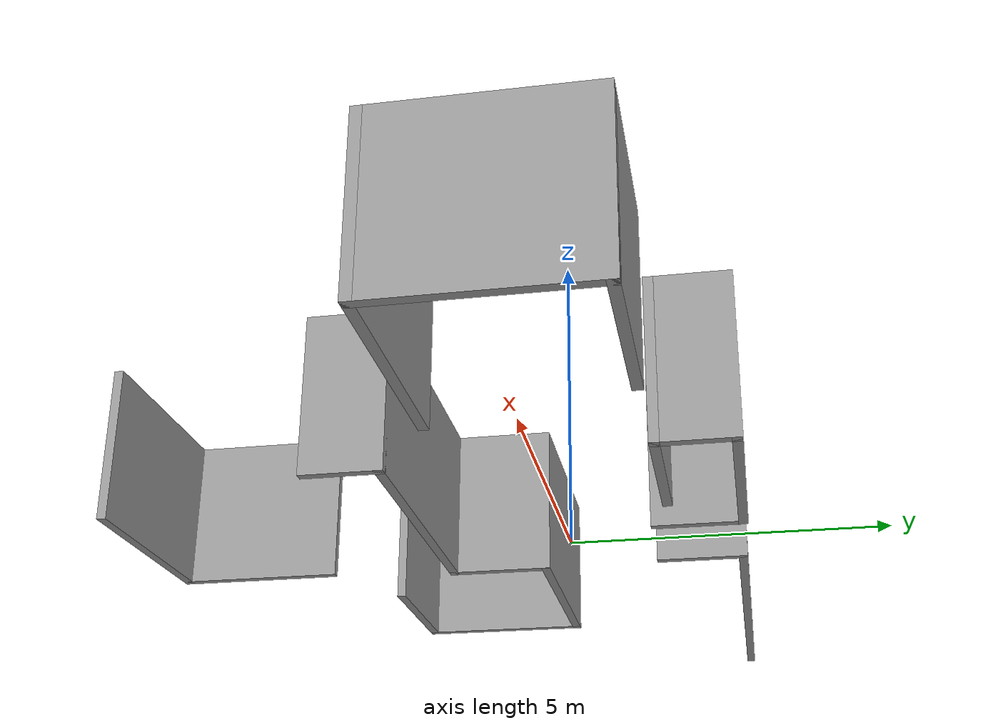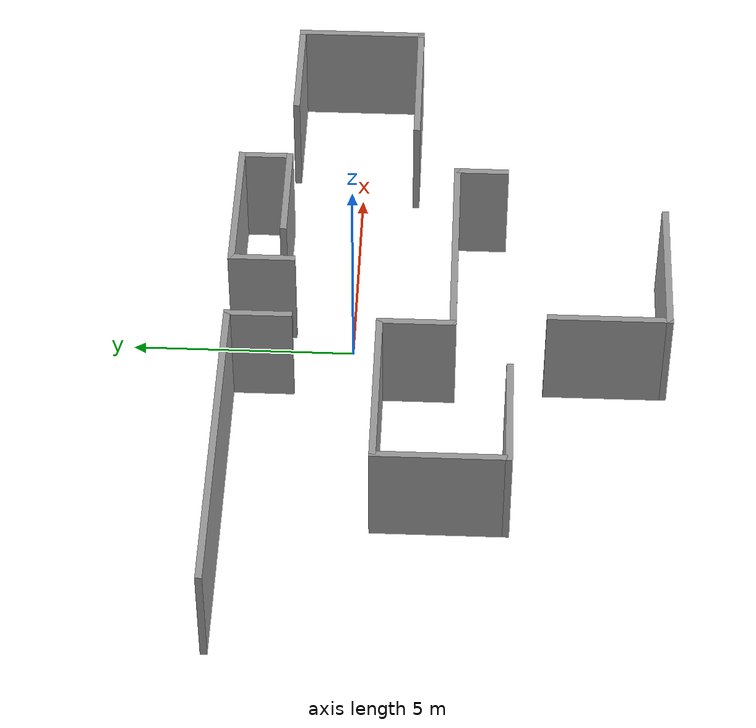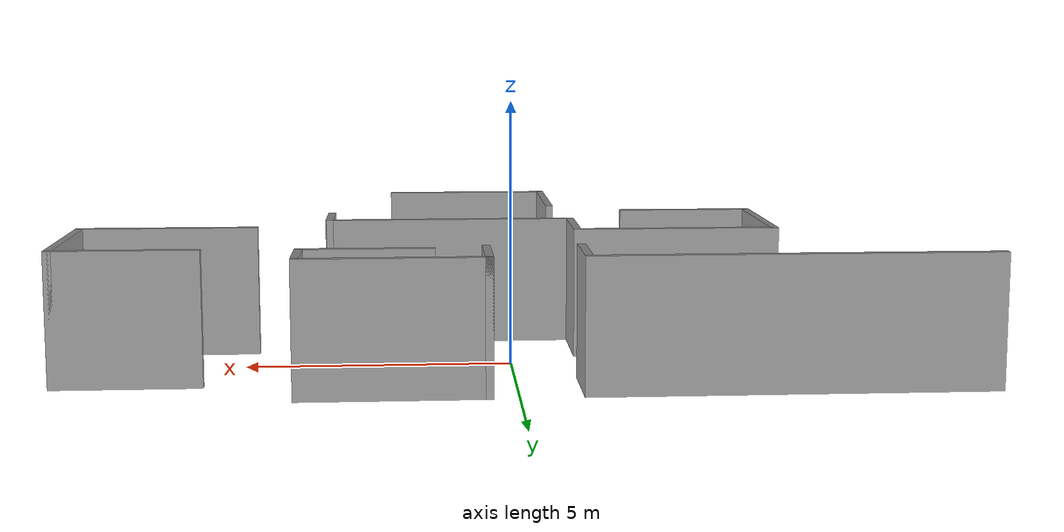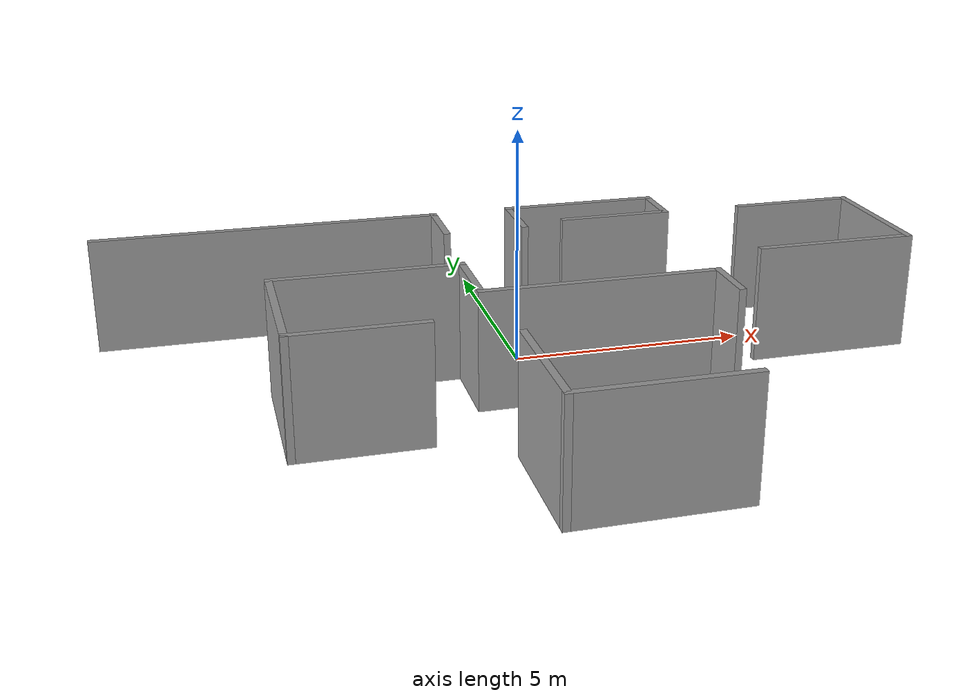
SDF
<?xml version='1.0'?>
<sdf version='1.7'>
  <model name='n_model'>
    <pose>-0.13868 -2.10127 0 0 -0 0</pose>
    <link name='Wall_0'>
      <collision name='Wall_0_Collision'>
        <geometry>
          <box>
            <size>3 0.15 2.5</size>
          </box>
        </geometry>
        <pose>0 0 1.25 0 -0 0</pose>
      </collision>
      <visual name='Wall_0_Visual'>
        <pose>0 0 1.25 0 -0 0</pose>
        <geometry>
          <box>
            <size>3 0.15 2.5</size>
          </box>
        </geometry>
        <material>
          <script>
            <uri>file://media/materials/scripts/gazebo.material</uri>
            <name>Gazebo/Grey</name>
          </script>
          <ambient>1 1 1 1</ambient>
        </material>
        <meta>
          <layer>0</layer>
        </meta>
      </visual>
      <pose>-5.04132 0.046267 0 0 -0 1.5708</pose>
    </link>
    <link name='Wall_1'>
      <collision name='Wall_1_Collision'>
        <geometry>
          <box>
            <size>4 0.15 2.5</size>
          </box>
        </geometry>
        <pose>0 0 1.25 0 -0 0</pose>
      </collision>
      <visual name='Wall_1_Visual'>
        <pose>0 0 1.25 0 -0 0</pose>
        <geometry>
          <box>
            <size>4 0.15 2.5</size>
          </box>
        </geometry>
        <material>
          <script>
            <uri>file://media/materials/scripts/gazebo.material</uri>
            <name>Gazebo/Grey</name>
          </script>
          <ambient>1 1 1 1</ambient>
        </material>
        <meta>
          <layer>0</layer>
        </meta>
      </visual>
      <pose>-3.11632 1.47127 0 0 -0 0</pose>
    </link>
    <link name='Wall_10'>
      <collision name='Wall_10_Collision'>
        <geometry>
          <box>
            <size>3.5 0.15 2.5</size>
          </box>
        </geometry>
        <pose>0 0 1.25 0 -0 0</pose>
      </collision>
      <visual name='Wall_10_Visual'>
        <pose>0 0 1.25 0 -0 0</pose>
        <geometry>
          <box>
            <size>3.5 0.15 2.5</size>
          </box>
        </geometry>
        <material>
          <script>
            <uri>file://media/materials/scripts/gazebo.material</uri>
            <name>Gazebo/Grey</name>
          </script>
          <ambient>1 1 1 1</ambient>
        </material>
        <meta>
          <layer>0</layer>
        </meta>
      </visual>
      <pose>2.33918 4.84677 0 0 -0 0</pose>
    </link>
    <link name='Wall_11'>
      <collision name='Wall_11_Collision'>
        <geometry>
          <box>
            <size>1.25 0.15 2.5</size>
          </box>
        </geometry>
        <pose>0 0 1.25 0 -0 0</pose>
      </collision>
      <visual name='Wall_11_Visual'>
        <pose>0 0 1.25 0 -0 0</pose>
        <geometry>
          <box>
            <size>1.25 0.15 2.5</size>
          </box>
        </geometry>
        <material>
          <script>
            <uri>file://media/materials/scripts/gazebo.material</uri>
            <name>Gazebo/Grey</name>
          </script>
          <ambient>1 1 1 1</ambient>
        </material>
        <meta>
          <layer>0</layer>
        </meta>
      </visual>
      <pose>4.01418 4.29677 0 0 -0 -1.5708</pose>
    </link>
    <link name='Wall_12'>
      <collision name='Wall_12_Collision'>
        <geometry>
          <box>
            <size>2.5 0.15 2.5</size>
          </box>
        </geometry>
        <pose>0 0 1.25 0 -0 0</pose>
      </collision>
      <visual name='Wall_12_Visual'>
        <pose>0 0 1.25 0 -0 0</pose>
        <geometry>
          <box>
            <size>2.5 0.15 2.5</size>
          </box>
        </geometry>
        <material>
          <script>
            <uri>file://media/materials/scripts/gazebo.material</uri>
            <name>Gazebo/Grey</name>
          </script>
          <ambient>1 1 1 1</ambient>
        </material>
        <meta>
          <layer>0</layer>
        </meta>
      </visual>
      <pose>2.83918 3.74677 0 0 -0 3.14159</pose>
    </link>
    <link name='Wall_14'>
      <collision name='Wall_14_Collision'>
        <geometry>
          <box>
            <size>2.75 0.15 2.5</size>
          </box>
        </geometry>
        <pose>0 0 1.25 0 -0 0</pose>
      </collision>
      <visual name='Wall_14_Visual'>
        <pose>0 0 1.25 0 -0 0</pose>
        <geometry>
          <box>
            <size>2.75 0.15 2.5</size>
          </box>
        </geometry>
        <material>
          <script>
            <uri>file://media/materials/scripts/gazebo.material</uri>
            <name>Gazebo/Grey</name>
          </script>
          <ambient>1 1 1 1</ambient>
        </material>
        <meta>
          <layer>0</layer>
        </meta>
      </visual>
      <pose>-3.74132 -1.37873 0 0 -0 0</pose>
    </link>
    <link name='Wall_18'>
      <collision name='Wall_18_Collision'>
        <geometry>
          <box>
            <size>3.5 0.15 2.5</size>
          </box>
        </geometry>
        <pose>0 0 1.25 0 -0 0</pose>
      </collision>
      <visual name='Wall_18_Visual'>
        <pose>0 0 1.25 0 -0 0</pose>
        <geometry>
          <box>
            <size>3.5 0.15 2.5</size>
          </box>
        </geometry>
        <material>
          <script>
            <uri>file://media/materials/scripts/gazebo.material</uri>
            <name>Gazebo/Grey</name>
          </script>
          <ambient>1 1 1 1</ambient>
        </material>
        <meta>
          <layer>0</layer>
        </meta>
      </visual>
      <pose>0.739371 -4.84677 0 0 -0 3.14159</pose>
    </link>
    <link name='Wall_19'>
      <collision name='Wall_19_Collision'>
        <geometry>
          <box>
            <size>2.75 0.15 2.5</size>
          </box>
        </geometry>
        <pose>0 0 1.25 0 -0 0</pose>
      </collision>
      <visual name='Wall_19_Visual'>
        <pose>0 0 1.25 0 -0 0</pose>
        <geometry>
          <box>
            <size>2.75 0.15 2.5</size>
          </box>
        </geometry>
        <material>
          <script>
            <uri>file://media/materials/scripts/gazebo.material</uri>
            <name>Gazebo/Grey</name>
          </script>
          <ambient>1 1 1 1</ambient>
        </material>
        <meta>
          <layer>0</layer>
        </meta>
      </visual>
      <pose>-0.935629 -3.54677 0 0 -0 1.5708</pose>
    </link>
    <link name='Wall_2'>
      <collision name='Wall_2_Collision'>
        <geometry>
          <box>
            <size>1.75 0.15 2.5</size>
          </box>
        </geometry>
        <pose>0 0 1.25 0 -0 0</pose>
      </collision>
      <visual name='Wall_2_Visual'>
        <pose>0 0 1.25 0 -0 0</pose>
        <geometry>
          <box>
            <size>1.75 0.15 2.5</size>
          </box>
        </geometry>
        <material>
          <script>
            <uri>file://media/materials/scripts/gazebo.material</uri>
            <name>Gazebo/Grey</name>
          </script>
          <ambient>1 1 1 1</ambient>
        </material>
        <meta>
          <layer>0</layer>
        </meta>
      </visual>
      <pose>-1.19132 0.671268 0 0 -0 -1.5708</pose>
    </link>
    <link name='Wall_21'>
      <collision name='Wall_21_Collision'>
        <geometry>
          <box>
            <size>2.75 0.15 2.5</size>
          </box>
        </geometry>
        <pose>0 0 1.25 0 -0 0</pose>
      </collision>
      <visual name='Wall_21_Visual'>
        <pose>0 0 1.25 0 -0 0</pose>
        <geometry>
          <box>
            <size>2.75 0.15 2.5</size>
          </box>
        </geometry>
        <material>
          <script>
            <uri>file://media/materials/scripts/gazebo.material</uri>
            <name>Gazebo/Grey</name>
          </script>
          <ambient>1 1 1 1</ambient>
        </material>
        <meta>
          <layer>0</layer>
        </meta>
      </visual>
      <pose>7.12082 3.69547 0 0 -0 0</pose>
    </link>
    <link name='Wall_22'>
      <collision name='Wall_22_Collision'>
        <geometry>
          <box>
            <size>3 0.15 2.5</size>
          </box>
        </geometry>
        <pose>0 0 1.25 0 -0 0</pose>
      </collision>
      <visual name='Wall_22_Visual'>
        <pose>0 0 1.25 0 -0 0</pose>
        <geometry>
          <box>
            <size>3 0.15 2.5</size>
          </box>
        </geometry>
        <material>
          <script>
            <uri>file://media/materials/scripts/gazebo.material</uri>
            <name>Gazebo/Grey</name>
          </script>
          <ambient>1 1 1 1</ambient>
        </material>
        <meta>
          <layer>0</layer>
        </meta>
      </visual>
      <pose>8.42082 2.27047 0 0 -0 -1.5708</pose>
    </link>
    <link name='Wall_23'>
      <collision name='Wall_23_Collision'>
        <geometry>
          <box>
            <size>3.5 0.15 2.5</size>
          </box>
        </geometry>
        <pose>0 0 1.25 0 -0 0</pose>
      </collision>
      <visual name='Wall_23_Visual'>
        <pose>0 0 1.25 0 -0 0</pose>
        <geometry>
          <box>
            <size>3.5 0.15 2.5</size>
          </box>
        </geometry>
        <material>
          <script>
            <uri>file://media/materials/scripts/gazebo.material</uri>
            <name>Gazebo/Grey</name>
          </script>
          <ambient>1 1 1 1</ambient>
        </material>
        <meta>
          <layer>0</layer>
        </meta>
      </visual>
      <pose>6.74582 0.845466 0 0 -0 3.14159</pose>
    </link>
    <link name='Wall_3'>
      <collision name='Wall_3_Collision'>
        <geometry>
          <box>
            <size>5 0.15 2.5</size>
          </box>
        </geometry>
        <pose>0 0 1.25 0 -0 0</pose>
      </collision>
      <visual name='Wall_3_Visual'>
        <pose>0 0 1.25 0 -0 0</pose>
        <geometry>
          <box>
            <size>5 0.15 2.5</size>
          </box>
        </geometry>
        <material>
          <script>
            <uri>file://media/materials/scripts/gazebo.material</uri>
            <name>Gazebo/Grey</name>
          </script>
          <ambient>1 1 1 1</ambient>
        </material>
        <meta>
          <layer>0</layer>
        </meta>
      </visual>
      <pose>1.23368 -0.128733 0 0 -0 0</pose>
    </link>
    <link name='Wall_4'>
      <collision name='Wall_4_Collision'>
        <geometry>
          <box>
            <size>1.25 0.15 2.5</size>
          </box>
        </geometry>
        <pose>0 0 1.25 0 -0 0</pose>
      </collision>
      <visual name='Wall_4_Visual'>
        <pose>0 0 1.25 0 -0 0</pose>
        <geometry>
          <box>
            <size>1.25 0.15 2.5</size>
          </box>
        </geometry>
        <material>
          <script>
            <uri>file://media/materials/scripts/gazebo.material</uri>
            <name>Gazebo/Grey</name>
          </script>
          <ambient>1 1 1 1</ambient>
        </material>
        <meta>
          <layer>0</layer>
        </meta>
      </visual>
      <pose>3.65868 -0.678733 0 0 -0 -1.5708</pose>
    </link>
    <link name='Wall_6'>
      <collision name='Wall_6_Collision'>
        <geometry>
          <box>
            <size>7.5 0.15 2.5</size>
          </box>
        </geometry>
        <pose>0 0 1.25 0 -0 0</pose>
      </collision>
      <visual name='Wall_6_Visual'>
        <pose>0 0 1.25 0 -0 0</pose>
        <geometry>
          <box>
            <size>7.5 0.15 2.5</size>
          </box>
        </geometry>
        <material>
          <script>
            <uri>file://media/materials/scripts/gazebo.material</uri>
            <name>Gazebo/Grey</name>
          </script>
          <ambient>1 1 1 1</ambient>
        </material>
        <meta>
          <layer>0</layer>
        </meta>
      </visual>
      <pose>-4.74582 4.80777 0 0 -0 0</pose>
    </link>
    <link name='Wall_7'>
      <collision name='Wall_7_Collision'>
        <geometry>
          <box>
            <size>1.5 0.15 2.5</size>
          </box>
        </geometry>
        <pose>0 0 1.25 0 -0 0</pose>
      </collision>
      <visual name='Wall_7_Visual'>
        <pose>0 0 1.25 0 -0 0</pose>
        <geometry>
          <box>
            <size>1.5 0.15 2.5</size>
          </box>
        </geometry>
        <material>
          <script>
            <uri>file://media/materials/scripts/gazebo.material</uri>
            <name>Gazebo/Grey</name>
          </script>
          <ambient>1 1 1 1</ambient>
        </material>
        <meta>
          <layer>0</layer>
        </meta>
      </visual>
      <pose>-1.07082 4.13277 0 0 -0 -1.5708</pose>
    </link>
    <link name='Wall_9'>
      <collision name='Wall_9_Collision'>
        <geometry>
          <box>
            <size>1.5 0.15 2.5</size>
          </box>
        </geometry>
        <pose>0 0 1.25 0 -0 0</pose>
      </collision>
      <visual name='Wall_9_Visual'>
        <pose>0 0 1.25 0 -0 0</pose>
        <geometry>
          <box>
            <size>1.5 0.15 2.5</size>
          </box>
        </geometry>
        <material>
          <script>
            <uri>file://media/materials/scripts/gazebo.material</uri>
            <name>Gazebo/Grey</name>
          </script>
          <ambient>1 1 1 1</ambient>
        </material>
        <meta>
          <layer>0</layer>
        </meta>
      </visual>
      <pose>0.66418 4.17177 0 0 -0 1.5708</pose>
    </link>
    <static>1</static>
  </model>
</sdf>
